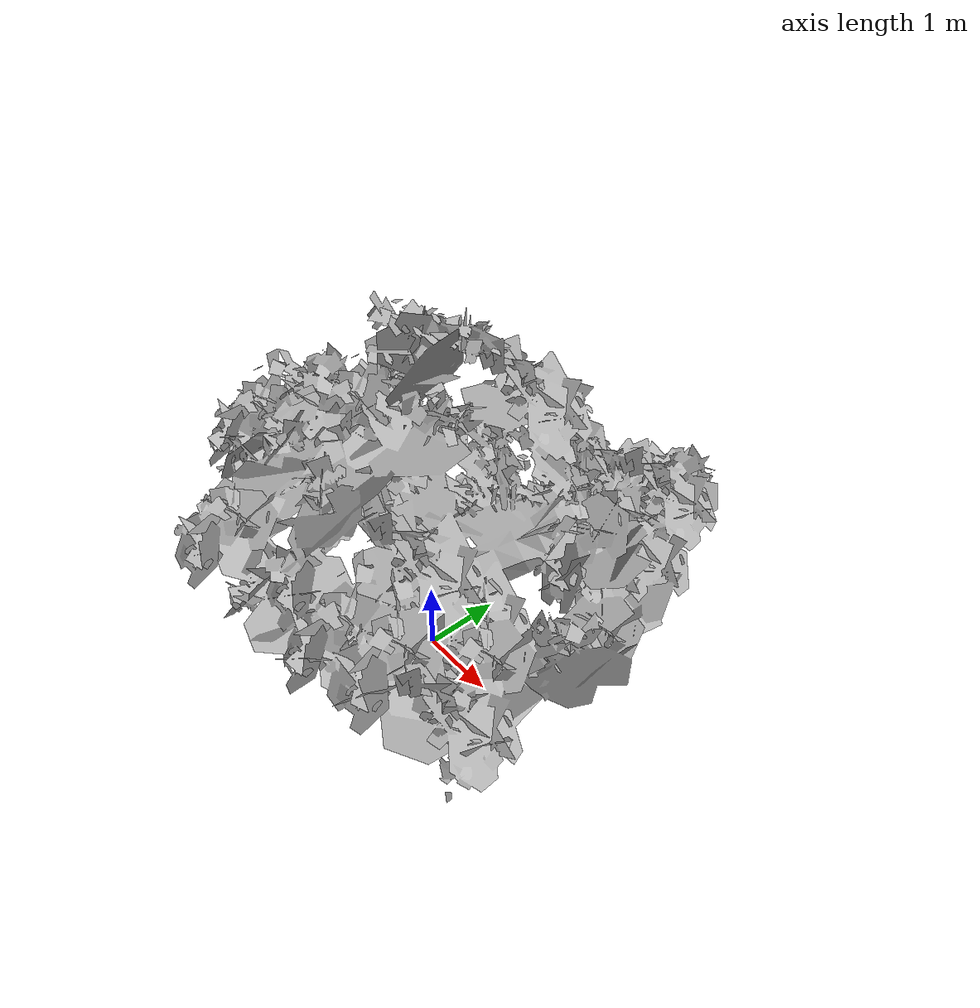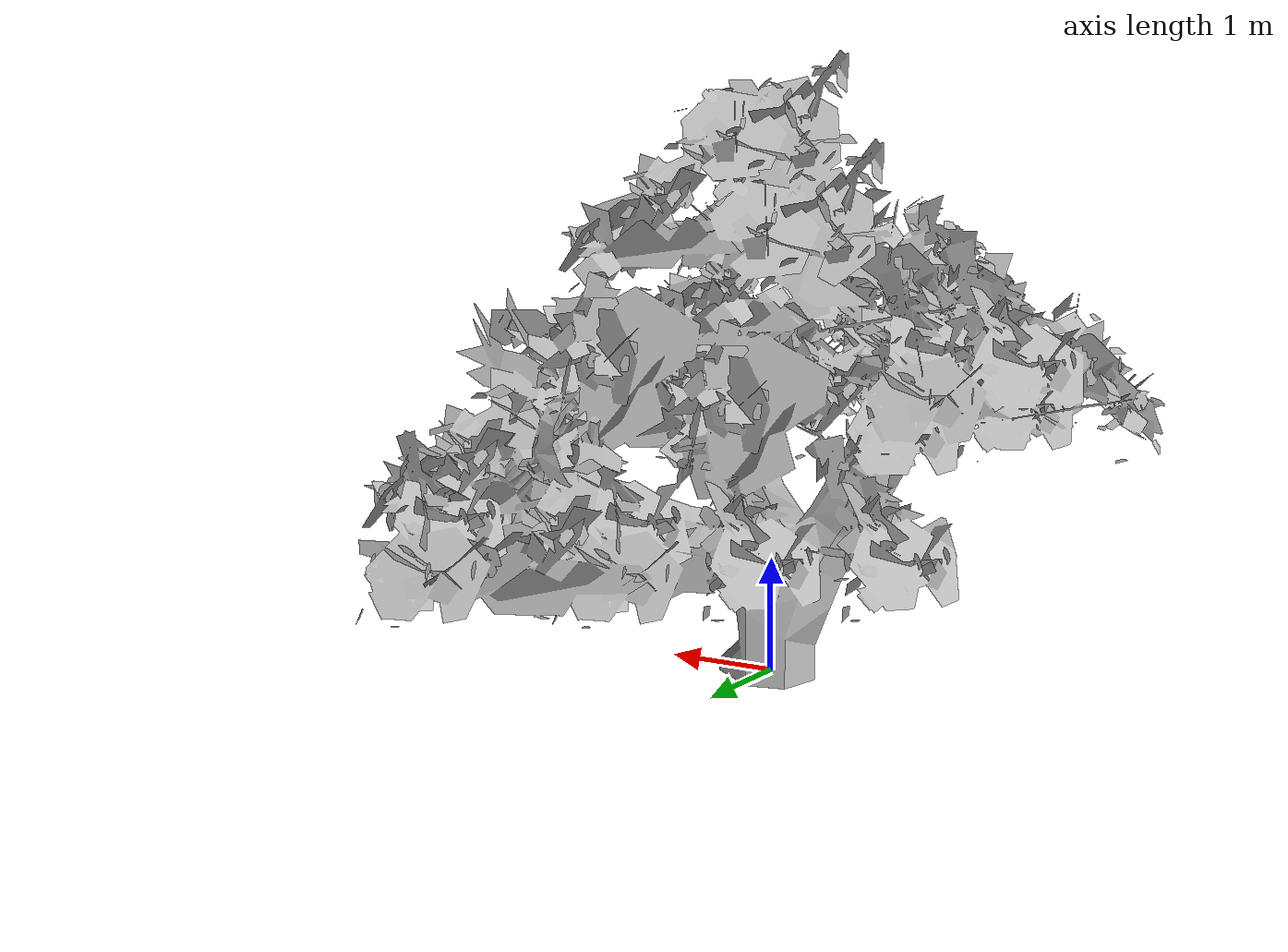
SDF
<?xml version="1.0"?>
<sdf version="1.4">
  <model name="tree2">
    <static>true</static>
    <link name="link">
      <pose>0 0 0 0 0 0</pose>
      <collision name="collision">
        <geometry>
          <mesh>
             <uri>model://tree2/models/tree2.dae</uri>
	     <scale>1 1 1</scale>
          </mesh>
        </geometry>
      </collision>
      <visual name="visual">
         <geometry>
          <mesh>
             <uri>model://tree2/models/tree2.dae</uri>
	     <scale>1 1 1</scale>
          </mesh>
        </geometry>
      </visual>
    </link>
  </model>
</sdf>
